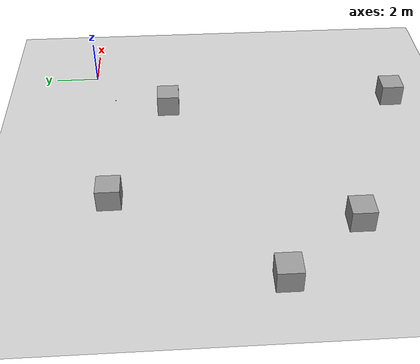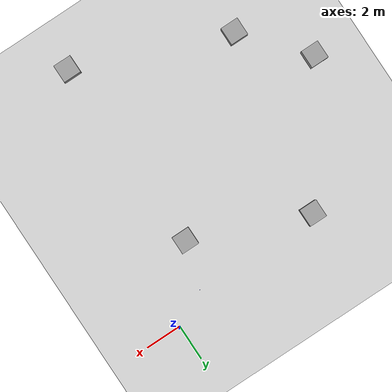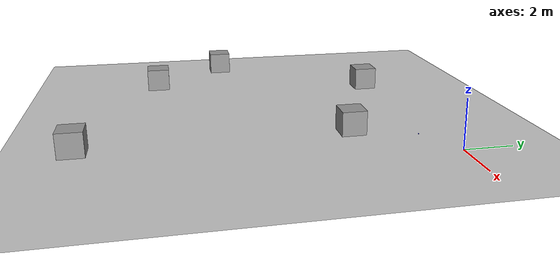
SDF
<sdf version="1.7">
 <world name="my_world">
  <model name="ground_plane">
   <static>1</static>
   <link name="link">
    <collision name="collision">
     <geometry><plane><normal>0 0 1</normal><size>100 100</size></plane></geometry>
     <surface>
      <contact><collide_bitmask>65535</collide_bitmask></contact>
      <friction><ode><mu>100</mu><mu2>50</mu2></ode></friction>
     </surface>
    </collision>
    <visual name="visual">
     <cast_shadows>0</cast_shadows>
     <geometry><plane><normal>0 0 1</normal><size>100 100</size></plane></geometry>
     <material>
      <script><uri>file://media/materials/scripts/gazebo.material</uri><name>Gazebo/Grey</name></script>
     </material>
    </visual>
   </link>
  </model>
  <model name="blue_cube_5">
   <pose>-1.9 -1 0.015 -2.2e-05 3e-06 0</pose>
   <link name="link">
    <inertial>
     <mass>0.005</mass>
     <inertia><ixx>1</ixx><ixy>0</ixy><ixz>0</ixz><iyy>1</iyy><iyz>0</iyz><izz>1</izz></inertia>
    </inertial>
    <collision name="collision">
     <geometry><box><size>0.03 0.03 0.03</size></box></geometry>
     <surface>
      <contact>
       <ode>
        <soft_cfm>0.001</soft_cfm>
        <soft_erp>0.2</soft_erp>
        <max_vel>0.1</max_vel>
        <min_depth>0.001</min_depth>
       </ode>
      </contact>
      <friction><ode><mu>0.01</mu><mu2>0.01</mu2></ode></friction>
     </surface>
    </collision>
    <visual name="visual">
     <geometry><box><size>0.03 0.03 0.03</size></box></geometry>
     <material><ambient>0 0 1 1</ambient><diffuse>0 0 1 1</diffuse></material>
    </visual>
   </link>
  </model>
  <model name="independent_box_1">
   <pose>-8.899932 -1.11285 0.5 0 -0 0</pose>
   <link name="link_1">
    <inertial>
     <mass>1</mass>
     <inertia>
      <ixx>0.166667</ixx>
      <ixy>0</ixy>
      <ixz>0</ixz>
      <iyy>0.166667</iyy>
      <iyz>0</iyz>
      <izz>0.166667</izz>
     </inertia>
    </inertial>
    <visual name="visual">
     <geometry><box><size>1 1 1</size></box></geometry>
     <material>
      <lighting>1</lighting>
      <script><uri>file://media/materials/scripts/gazebo.material</uri><name>Gazebo/Grey</name></script>
      <shader type="pixel"/>
     </material>
    </visual>
    <collision name="collision">
     <geometry><box><size>1 1 1</size></box></geometry>
     <surface>
      <friction>
       <ode><mu>1</mu><mu2>1</mu2><fdir1>0 0 0</fdir1><slip1>0</slip1><slip2>0</slip2></ode>
       <torsional>
        <coefficient>1</coefficient>
        <patch_radius>0</patch_radius>
        <surface_radius>0</surface_radius>
        <use_patch_radius>1</use_patch_radius>
        <ode><slip>0</slip></ode>
       </torsional>
      </friction>
      <bounce><restitution_coefficient>0</restitution_coefficient><threshold>1e+06</threshold></bounce>
      <contact>
       <collide_without_contact>0</collide_without_contact>
       <collide_without_contact_bitmask>1</collide_without_contact_bitmask>
       <collide_bitmask>1</collide_bitmask>
       <ode>
        <soft_cfm>0</soft_cfm>
        <soft_erp>0.2</soft_erp>
        <kp>1e+13</kp>
        <kd>1</kd>
        <max_vel>0.01</max_vel>
        <min_depth>0</min_depth>
       </ode>
       <bullet>
        <split_impulse>1</split_impulse>
        <split_impulse_penetration_threshold>-0.01</split_impulse_penetration_threshold>
        <soft_cfm>0</soft_cfm>
        <soft_erp>0.2</soft_erp>
        <kp>1e+13</kp>
        <kd>1</kd>
       </bullet>
      </contact>
     </surface>
    </collision>
   </link>
   <static>0</static>
  </model>
  <model name="independent_box_4">
   <pose>-2.695502 -3.54292 0.5 0 -0 0</pose>
   <link name="link_4">
    <inertial>
     <mass>1</mass>
     <inertia>
      <ixx>0.166667</ixx>
      <ixy>0</ixy>
      <ixz>0</ixz>
      <iyy>0.166667</iyy>
      <iyz>0</iyz>
      <izz>0.166667</izz>
     </inertia>
    </inertial>
    <visual name="visual">
     <geometry><box><size>1 1 1</size></box></geometry>
     <material>
      <lighting>1</lighting>
      <script><uri>file://media/materials/scripts/gazebo.material</uri><name>Gazebo/Grey</name></script>
      <shader type="pixel"/>
     </material>
    </visual>
    <collision name="collision">
     <geometry><box><size>1 1 1</size></box></geometry>
     <surface>
      <friction>
       <ode><mu>1</mu><mu2>1</mu2><fdir1>0 0 0</fdir1><slip1>0</slip1><slip2>0</slip2></ode>
       <torsional>
        <coefficient>1</coefficient>
        <patch_radius>0</patch_radius>
        <surface_radius>0</surface_radius>
        <use_patch_radius>1</use_patch_radius>
        <ode><slip>0</slip></ode>
       </torsional>
      </friction>
      <bounce><restitution_coefficient>0</restitution_coefficient><threshold>1e+06</threshold></bounce>
      <contact>
       <collide_without_contact>0</collide_without_contact>
       <collide_without_contact_bitmask>1</collide_without_contact_bitmask>
       <collide_bitmask>1</collide_bitmask>
       <ode>
        <soft_cfm>0</soft_cfm>
        <soft_erp>0.2</soft_erp>
        <kp>1e+13</kp>
        <kd>1</kd>
        <max_vel>0.01</max_vel>
        <min_depth>0</min_depth>
       </ode>
       <bullet>
        <split_impulse>1</split_impulse>
        <split_impulse_penetration_threshold>-0.01</split_impulse_penetration_threshold>
        <soft_cfm>0</soft_cfm>
        <soft_erp>0.2</soft_erp>
        <kp>1e+13</kp>
        <kd>1</kd>
       </bullet>
      </contact>
     </surface>
    </collision>
   </link>
   <static>0</static>
  </model>
  <model name="independent_box_8">
   <pose>-13.437002 -7.81538 0.5 0 -0 0</pose>
   <link name="link_8">
    <inertial>
     <mass>1</mass>
     <inertia>
      <ixx>0.166667</ixx>
      <ixy>0</ixy>
      <ixz>0</ixz>
      <iyy>0.166667</iyy>
      <iyz>0</iyz>
      <izz>0.166667</izz>
     </inertia>
    </inertial>
    <visual name="visual">
     <geometry><box><size>1 1 1</size></box></geometry>
     <material>
      <lighting>1</lighting>
      <script><uri>file://media/materials/scripts/gazebo.material</uri><name>Gazebo/Grey</name></script>
      <shader type="pixel"/>
     </material>
    </visual>
    <collision name="collision">
     <geometry><box><size>1 1 1</size></box></geometry>
     <surface>
      <friction>
       <ode><mu>1</mu><mu2>1</mu2><fdir1>0 0 0</fdir1><slip1>0</slip1><slip2>0</slip2></ode>
       <torsional>
        <coefficient>1</coefficient>
        <patch_radius>0</patch_radius>
        <surface_radius>0</surface_radius>
        <use_patch_radius>1</use_patch_radius>
        <ode><slip>0</slip></ode>
       </torsional>
      </friction>
      <bounce><restitution_coefficient>0</restitution_coefficient><threshold>1e+06</threshold></bounce>
      <contact>
       <collide_without_contact>0</collide_without_contact>
       <collide_without_contact_bitmask>1</collide_without_contact_bitmask>
       <collide_bitmask>1</collide_bitmask>
       <ode>
        <soft_cfm>0</soft_cfm>
        <soft_erp>0.2</soft_erp>
        <kp>1e+13</kp>
        <kd>1</kd>
        <max_vel>0.01</max_vel>
        <min_depth>0</min_depth>
       </ode>
       <bullet>
        <split_impulse>1</split_impulse>
        <split_impulse_penetration_threshold>-0.01</split_impulse_penetration_threshold>
        <soft_cfm>0</soft_cfm>
        <soft_erp>0.2</soft_erp>
        <kp>1e+13</kp>
        <kd>1</kd>
       </bullet>
      </contact>
     </surface>
    </collision>
   </link>
   <static>0</static>
  </model>
  <model name="independent_box_9">
   <pose>-10.667102 -11.05305 0.5 0 -0 0</pose>
   <link name="link_9">
    <inertial>
     <mass>1</mass>
     <inertia>
      <ixx>0.166667</ixx>
      <ixy>0</ixy>
      <ixz>0</ixz>
      <iyy>0.166667</iyy>
      <iyz>0</iyz>
      <izz>0.166667</izz>
     </inertia>
    </inertial>
    <visual name="visual">
     <geometry><box><size>1 1 1</size></box></geometry>
     <material>
      <lighting>1</lighting>
      <script><uri>file://media/materials/scripts/gazebo.material</uri><name>Gazebo/Grey</name></script>
      <shader type="pixel"/>
     </material>
    </visual>
    <collision name="collision">
     <geometry><box><size>1 1 1</size></box></geometry>
     <surface>
      <friction>
       <ode><mu>1</mu><mu2>1</mu2><fdir1>0 0 0</fdir1><slip1>0</slip1><slip2>0</slip2></ode>
       <torsional>
        <coefficient>1</coefficient>
        <patch_radius>0</patch_radius>
        <surface_radius>0</surface_radius>
        <use_patch_radius>1</use_patch_radius>
        <ode><slip>0</slip></ode>
       </torsional>
      </friction>
      <bounce><restitution_coefficient>0</restitution_coefficient><threshold>1e+06</threshold></bounce>
      <contact>
       <collide_without_contact>0</collide_without_contact>
       <collide_without_contact_bitmask>1</collide_without_contact_bitmask>
       <collide_bitmask>1</collide_bitmask>
       <ode>
        <soft_cfm>0</soft_cfm>
        <soft_erp>0.2</soft_erp>
        <kp>1e+13</kp>
        <kd>1</kd>
        <max_vel>0.01</max_vel>
        <min_depth>0</min_depth>
       </ode>
       <bullet>
        <split_impulse>1</split_impulse>
        <split_impulse_penetration_threshold>-0.01</split_impulse_penetration_threshold>
        <soft_cfm>0</soft_cfm>
        <soft_erp>0.2</soft_erp>
        <kp>1e+13</kp>
        <kd>1</kd>
       </bullet>
      </contact>
     </surface>
    </collision>
   </link>
   <static>0</static>
  </model>
  <model name="independent_box_11">
   <pose>-2.503772 -14.16292 0.5 0 -0 0</pose>
   <link name="link_11">
    <inertial>
     <mass>1</mass>
     <inertia>
      <ixx>0.166667</ixx>
      <ixy>0</ixy>
      <ixz>0</ixz>
      <iyy>0.166667</iyy>
      <iyz>0</iyz>
      <izz>0.166667</izz>
     </inertia>
    </inertial>
    <visual name="visual">
     <geometry><box><size>1 1 1</size></box></geometry>
     <material>
      <lighting>1</lighting>
      <script><uri>file://media/materials/scripts/gazebo.material</uri><name>Gazebo/Grey</name></script>
      <shader type="pixel"/>
     </material>
    </visual>
    <collision name="collision">
     <geometry><box><size>1 1 1</size></box></geometry>
     <surface>
      <friction>
       <ode><mu>1</mu><mu2>1</mu2><fdir1>0 0 0</fdir1><slip1>0</slip1><slip2>0</slip2></ode>
       <torsional>
        <coefficient>1</coefficient>
        <patch_radius>0</patch_radius>
        <surface_radius>0</surface_radius>
        <use_patch_radius>1</use_patch_radius>
        <ode><slip>0</slip></ode>
       </torsional>
      </friction>
      <bounce><restitution_coefficient>0</restitution_coefficient><threshold>1e+06</threshold></bounce>
      <contact>
       <collide_without_contact>0</collide_without_contact>
       <collide_without_contact_bitmask>1</collide_without_contact_bitmask>
       <collide_bitmask>1</collide_bitmask>
       <ode>
        <soft_cfm>0</soft_cfm>
        <soft_erp>0.2</soft_erp>
        <kp>1e+13</kp>
        <kd>1</kd>
        <max_vel>0.01</max_vel>
        <min_depth>0</min_depth>
       </ode>
       <bullet>
        <split_impulse>1</split_impulse>
        <split_impulse_penetration_threshold>-0.01</split_impulse_penetration_threshold>
        <soft_cfm>0</soft_cfm>
        <soft_erp>0.2</soft_erp>
        <kp>1e+13</kp>
        <kd>1</kd>
       </bullet>
      </contact>
     </surface>
    </collision>
   </link>
   <static>0</static>
  </model>
 </world>
</sdf>
